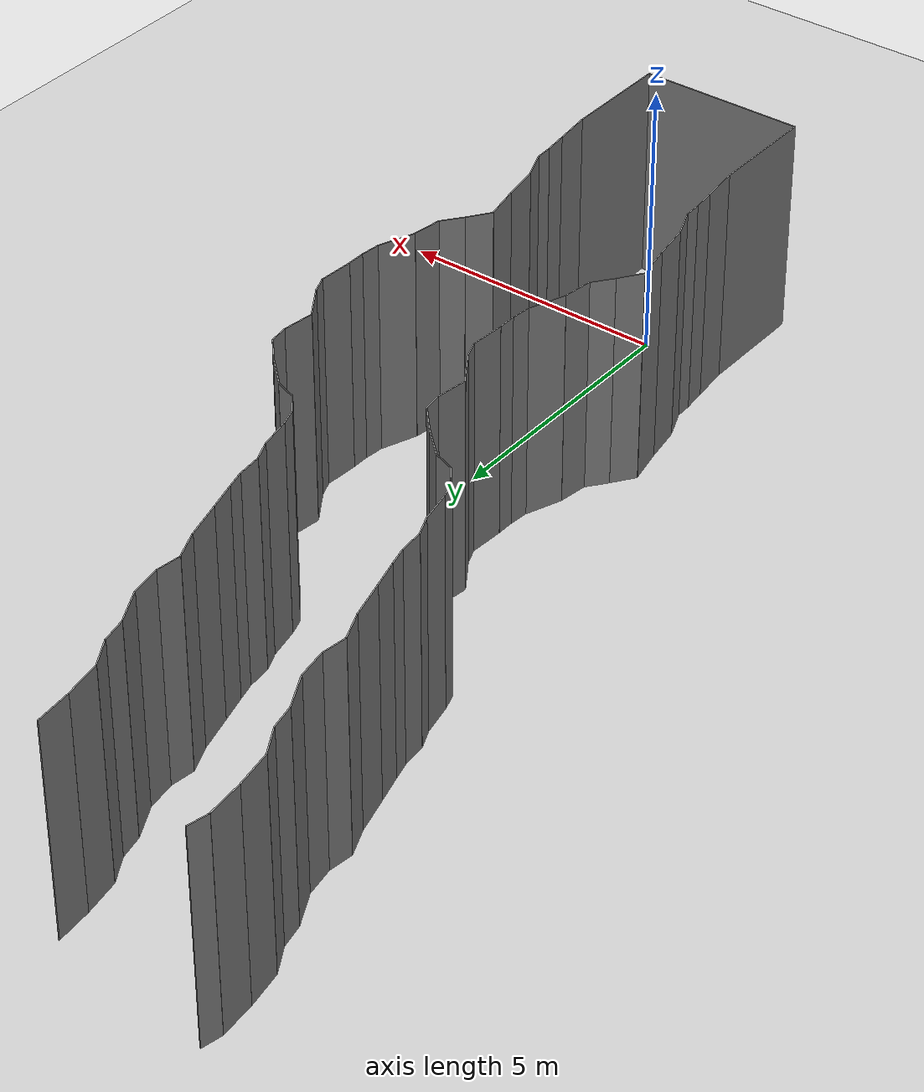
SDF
<sdf version="1.6">
 <world name="default">
  <model name="ground_plane">
   <static>1</static>
   <link name="link">
    <collision name="collision">
     <geometry><plane><normal>0 0 1</normal><size>200 200</size></plane></geometry>
     <surface><friction><ode><mu>100</mu><mu2>50</mu2></ode></friction></surface>
    </collision>
    <visual name="visual">
     <cast_shadows>0</cast_shadows>
     <geometry><plane><normal>0 0 1</normal><size>200 200</size></plane></geometry>
     <material>
      <script><uri>file://media/materials/scripts/gazebo.material</uri><name>Gazebo/Grey</name></script>
     </material>
    </visual>
   </link>
   <pose>0 100 0 0 -0 0</pose>
  </model>
  <model name="wall_back">
   <static>1</static>
   <pose>0.0 -2 2 0.0 0 0.0</pose>
   <link name="link">
    <collision name="collision"><geometry><box><size>3 0.02 4</size></box></geometry></collision>
    <visual name="visual">
     <material>
      <script><name>Gazebo/Grey</name><uri>file://media/materials/scripts/gazebo.material</uri></script>
     </material>
     <geometry><box><size>3 0.02 4</size></box></geometry>
    </visual>
   </link>
  </model>
  <model name="wall_left">
   <static>1</static>
   <pose>1.5 -1 2 0 0 0.00</pose>
   <link name="link">
    <collision name="collision"><geometry><box><size>0.02 2 4</size></box></geometry></collision>
    <visual name="visual">
     <material>
      <script><name>Gazebo/Grey</name><uri>file://media/materials/scripts/gazebo.material</uri></script>
     </material>
     <geometry><box><size>0.02 2 4</size></box></geometry>
    </visual>
   </link>
  </model>
  <model name="wall_right">
   <static>1</static>
   <pose>-1.5 -1 2 0 0 0.00</pose>
   <link name="link">
    <collision name="collision"><geometry><box><size>0.02 2 4</size></box></geometry></collision>
    <visual name="visual">
     <material>
      <script><name>Gazebo/Grey</name><uri>file://media/materials/scripts/gazebo.material</uri></script>
     </material>
     <geometry><box><size>0.02 2 4</size></box></geometry>
    </visual>
   </link>
  </model>
  <model name="wall_0">
   <static>1</static>
   <pose>-1.539381283969348 0.34608955113164763 2 0 0 0.11330195482381757</pose>
   <link name="link">
    <collision name="collision"><geometry><box><size>0.02 0.696645858179 4</size></box></geometry></collision>
    <visual name="visual">
     <material>
      <script><name>Gazebo/Grey</name><uri>file://media/materials/scripts/gazebo.material</uri></script>
     </material>
     <geometry><box><size>0.02 0.696645858179 4</size></box></geometry>
    </visual>
   </link>
  </model>
  <model name="wall_1">
   <static>1</static>
   <pose>1.460618716030652 0.34608955113164763 2 0 0 0.11330195482381757</pose>
   <link name="link">
    <collision name="collision"><geometry><box><size>0.02 0.696645858179 4</size></box></geometry></collision>
    <visual name="visual">
     <material>
      <script><name>Gazebo/Grey</name><uri>file://media/materials/scripts/gazebo.material</uri></script>
     </material>
     <geometry><box><size>0.02 0.696645858179 4</size></box></geometry>
    </visual>
   </link>
  </model>
  <model name="wall_2">
   <static>1</static>
   <pose>-1.6018663273035938 0.903861173566263 2 0 0 0.10871336168001268</pose>
   <link name="link">
    <collision name="collision"><geometry><box><size>0.02 0.425878306599 4</size></box></geometry></collision>
    <visual name="visual">
     <material>
      <script><name>Gazebo/Grey</name><uri>file://media/materials/scripts/gazebo.material</uri></script>
     </material>
     <geometry><box><size>0.02 0.425878306599 4</size></box></geometry>
    </visual>
   </link>
  </model>
  <model name="wall_3">
   <static>1</static>
   <pose>1.3981336726964062 0.903861173566263 2 0 0 0.10871336168001268</pose>
   <link name="link">
    <collision name="collision"><geometry><box><size>0.02 0.425878306599 4</size></box></geometry></collision>
    <visual name="visual">
     <material>
      <script><name>Gazebo/Grey</name><uri>file://media/materials/scripts/gazebo.material</uri></script>
     </material>
     <geometry><box><size>0.02 0.425878306599 4</size></box></geometry>
    </visual>
   </link>
  </model>
  <model name="wall_4">
   <static>1</static>
   <pose>-1.6301238122375017 1.2685925525295065 2 0 0 0.03366090975978104</pose>
   <link name="link">
    <collision name="collision"><geometry><box><size>0.02 0.306272110794 4</size></box></geometry></collision>
    <visual name="visual">
     <material>
      <script><name>Gazebo/Grey</name><uri>file://media/materials/scripts/gazebo.material</uri></script>
     </material>
     <geometry><box><size>0.02 0.306272110794 4</size></box></geometry>
    </visual>
   </link>
  </model>
  <model name="wall_5">
   <static>1</static>
   <pose>1.3698761877624983 1.2685925525295065 2 0 0 0.03366090975978104</pose>
   <link name="link">
    <collision name="collision"><geometry><box><size>0.02 0.306272110794 4</size></box></geometry></collision>
    <visual name="visual">
     <material>
      <script><name>Gazebo/Grey</name><uri>file://media/materials/scripts/gazebo.material</uri></script>
     </material>
     <geometry><box><size>0.02 0.306272110794 4</size></box></geometry>
    </visual>
   </link>
  </model>
  <model name="wall_6">
   <static>1</static>
   <pose>-1.744771728942799 1.6880777122366888 2 0 0 0.3899178811531052</pose>
   <link name="link">
    <collision name="collision"><geometry><box><size>0.02 0.576114714787 4</size></box></geometry></collision>
    <visual name="visual">
     <material>
      <script><name>Gazebo/Grey</name><uri>file://media/materials/scripts/gazebo.material</uri></script>
     </material>
     <geometry><box><size>0.02 0.576114714787 4</size></box></geometry>
    </visual>
   </link>
  </model>
  <model name="wall_7">
   <static>1</static>
   <pose>1.255228271057201 1.6880777122366888 2 0 0 0.3899178811531052</pose>
   <link name="link">
    <collision name="collision"><geometry><box><size>0.02 0.576114714787 4</size></box></geometry></collision>
    <visual name="visual">
     <material>
      <script><name>Gazebo/Grey</name><uri>file://media/materials/scripts/gazebo.material</uri></script>
     </material>
     <geometry><box><size>0.02 0.576114714787 4</size></box></geometry>
    </visual>
   </link>
  </model>
  <model name="wall_8">
   <static>1</static>
   <pose>-1.910030564757278 2.2933393088433336 2 0 0 0.16311974463424703</pose>
   <link name="link">
    <collision name="collision"><geometry><box><size>0.02 0.686768027132 4</size></box></geometry></collision>
    <visual name="visual">
     <material>
      <script><name>Gazebo/Grey</name><uri>file://media/materials/scripts/gazebo.material</uri></script>
     </material>
     <geometry><box><size>0.02 0.686768027132 4</size></box></geometry>
    </visual>
   </link>
  </model>
  <model name="wall_9">
   <static>1</static>
   <pose>1.089969435242722 2.2933393088433336 2 0 0 0.16311974463424703</pose>
   <link name="link">
    <collision name="collision"><geometry><box><size>0.02 0.686768027132 4</size></box></geometry></collision>
    <visual name="visual">
     <material>
      <script><name>Gazebo/Grey</name><uri>file://media/materials/scripts/gazebo.material</uri></script>
     </material>
     <geometry><box><size>0.02 0.686768027132 4</size></box></geometry>
    </visual>
   </link>
  </model>
  <model name="wall_10">
   <static>1</static>
   <pose>-2.033596665253377 2.9646428908293028 2 0 0 0.20116936980153466</pose>
   <link name="link">
    <collision name="collision"><geometry><box><size>0.02 0.678641436373 4</size></box></geometry></collision>
    <visual name="visual">
     <material>
      <script><name>Gazebo/Grey</name><uri>file://media/materials/scripts/gazebo.material</uri></script>
     </material>
     <geometry><box><size>0.02 0.678641436373 4</size></box></geometry>
    </visual>
   </link>
  </model>
  <model name="wall_11">
   <static>1</static>
   <pose>0.966403334746623 2.9646428908293028 2 0 0 0.20116936980153466</pose>
   <link name="link">
    <collision name="collision"><geometry><box><size>0.02 0.678641436373 4</size></box></geometry></collision>
    <visual name="visual">
     <material>
      <script><name>Gazebo/Grey</name><uri>file://media/materials/scripts/gazebo.material</uri></script>
     </material>
     <geometry><box><size>0.02 0.678641436373 4</size></box></geometry>
    </visual>
   </link>
  </model>
  <model name="wall_12">
   <static>1</static>
   <pose>-1.9622658523186232 3.495883401475986 2 0 0 -0.6107205533705103</pose>
   <link name="link">
    <collision name="collision"><geometry><box><size>0.02 0.485239687058 4</size></box></geometry></collision>
    <visual name="visual">
     <material>
      <script><name>Gazebo/Grey</name><uri>file://media/materials/scripts/gazebo.material</uri></script>
     </material>
     <geometry><box><size>0.02 0.485239687058 4</size></box></geometry>
    </visual>
   </link>
  </model>
  <model name="wall_13">
   <static>1</static>
   <pose>1.0377341476813768 3.495883401475986 2 0 0 -0.6107205533705103</pose>
   <link name="link">
    <collision name="collision"><geometry><box><size>0.02 0.485239687058 4</size></box></geometry></collision>
    <visual name="visual">
     <material>
      <script><name>Gazebo/Grey</name><uri>file://media/materials/scripts/gazebo.material</uri></script>
     </material>
     <geometry><box><size>0.02 0.485239687058 4</size></box></geometry>
    </visual>
   </link>
  </model>
  <model name="wall_14">
   <static>1</static>
   <pose>-1.690713169516392 3.8673843807185744 2 0 0 -0.65403792310857</pose>
   <link name="link">
    <collision name="collision"><geometry><box><size>0.02 0.435309951297 4</size></box></geometry></collision>
    <visual name="visual">
     <material>
      <script><name>Gazebo/Grey</name><uri>file://media/materials/scripts/gazebo.material</uri></script>
     </material>
     <geometry><box><size>0.02 0.435309951297 4</size></box></geometry>
    </visual>
   </link>
  </model>
  <model name="wall_15">
   <static>1</static>
   <pose>1.309286830483608 3.8673843807185744 2 0 0 -0.65403792310857</pose>
   <link name="link">
    <collision name="collision"><geometry><box><size>0.02 0.435309951297 4</size></box></geometry></collision>
    <visual name="visual">
     <material>
      <script><name>Gazebo/Grey</name><uri>file://media/materials/scripts/gazebo.material</uri></script>
     </material>
     <geometry><box><size>0.02 0.435309951297 4</size></box></geometry>
    </visual>
   </link>
  </model>
  <model name="wall_16">
   <static>1</static>
   <pose>-1.5214225351436297 4.30762316468083 2 0 0 -0.13696933396929434</pose>
   <link name="link">
    <collision name="collision"><geometry><box><size>0.02 0.540058955466 4</size></box></geometry></collision>
    <visual name="visual">
     <material>
      <script><name>Gazebo/Grey</name><uri>file://media/materials/scripts/gazebo.material</uri></script>
     </material>
     <geometry><box><size>0.02 0.540058955466 4</size></box></geometry>
    </visual>
   </link>
  </model>
  <model name="wall_17">
   <static>1</static>
   <pose>1.4785774648563703 4.30762316468083 2 0 0 -0.13696933396929434</pose>
   <link name="link">
    <collision name="collision"><geometry><box><size>0.02 0.540058955466 4</size></box></geometry></collision>
    <visual name="visual">
     <material>
      <script><name>Gazebo/Grey</name><uri>file://media/materials/scripts/gazebo.material</uri></script>
     </material>
     <geometry><box><size>0.02 0.540058955466 4</size></box></geometry>
    </visual>
   </link>
  </model>
  <model name="wall_18">
   <static>1</static>
   <pose>-1.361425213174102 4.899337924793357 2 0 0 -0.36294667285411597</pose>
   <link name="link">
    <collision name="collision"><geometry><box><size>0.02 0.693614255691 4</size></box></geometry></collision>
    <visual name="visual">
     <material>
      <script><name>Gazebo/Grey</name><uri>file://media/materials/scripts/gazebo.material</uri></script>
     </material>
     <geometry><box><size>0.02 0.693614255691 4</size></box></geometry>
    </visual>
   </link>
  </model>
  <model name="wall_19">
   <static>1</static>
   <pose>1.638574786825898 4.899337924793357 2 0 0 -0.36294667285411597</pose>
   <link name="link">
    <collision name="collision"><geometry><box><size>0.02 0.693614255691 4</size></box></geometry></collision>
    <visual name="visual">
     <material>
      <script><name>Gazebo/Grey</name><uri>file://media/materials/scripts/gazebo.material</uri></script>
     </material>
     <geometry><box><size>0.02 0.693614255691 4</size></box></geometry>
    </visual>
   </link>
  </model>
  <model name="wall_20">
   <static>1</static>
   <pose>-1.2203908917650397 5.400729517939221 2 0 0 -0.10072743707660174</pose>
   <link name="link">
    <collision name="collision"><geometry><box><size>0.02 0.356159896919 4</size></box></geometry></collision>
    <visual name="visual">
     <material>
      <script><name>Gazebo/Grey</name><uri>file://media/materials/scripts/gazebo.material</uri></script>
     </material>
     <geometry><box><size>0.02 0.356159896919 4</size></box></geometry>
    </visual>
   </link>
  </model>
  <model name="wall_21">
   <static>1</static>
   <pose>1.7796091082349603 5.400729517939221 2 0 0 -0.10072743707660174</pose>
   <link name="link">
    <collision name="collision"><geometry><box><size>0.02 0.356159896919 4</size></box></geometry></collision>
    <visual name="visual">
     <material>
      <script><name>Gazebo/Grey</name><uri>file://media/materials/scripts/gazebo.material</uri></script>
     </material>
     <geometry><box><size>0.02 0.356159896919 4</size></box></geometry>
    </visual>
   </link>
  </model>
  <model name="wall_22">
   <static>1</static>
   <pose>-1.2024886098356897 5.740252224396053 2 0 0 3.0415604708249145e-05</pose>
   <link name="link">
    <collision name="collision"><geometry><box><size>0.02 0.324690791117 4</size></box></geometry></collision>
    <visual name="visual">
     <material>
      <script><name>Gazebo/Grey</name><uri>file://media/materials/scripts/gazebo.material</uri></script>
     </material>
     <geometry><box><size>0.02 0.324690791117 4</size></box></geometry>
    </visual>
   </link>
  </model>
  <model name="wall_23">
   <static>1</static>
   <pose>1.7975113901643103 5.740252224396053 2 0 0 3.0415604708249145e-05</pose>
   <link name="link">
    <collision name="collision"><geometry><box><size>0.02 0.324690791117 4</size></box></geometry></collision>
    <visual name="visual">
     <material>
      <script><name>Gazebo/Grey</name><uri>file://media/materials/scripts/gazebo.material</uri></script>
     </material>
     <geometry><box><size>0.02 0.324690791117 4</size></box></geometry>
    </visual>
   </link>
  </model>
  <model name="wall_24">
   <static>1</static>
   <pose>-1.1829643800035627 6.215769120135279 2 0 0 -0.0622786948214693</pose>
   <link name="link">
    <collision name="collision"><geometry><box><size>0.02 0.627559644854 4</size></box></geometry></collision>
    <visual name="visual">
     <material>
      <script><name>Gazebo/Grey</name><uri>file://media/materials/scripts/gazebo.material</uri></script>
     </material>
     <geometry><box><size>0.02 0.627559644854 4</size></box></geometry>
    </visual>
   </link>
  </model>
  <model name="wall_25">
   <static>1</static>
   <pose>1.8170356199964373 6.215769120135279 2 0 0 -0.0622786948214693</pose>
   <link name="link">
    <collision name="collision"><geometry><box><size>0.02 0.627559644854 4</size></box></geometry></collision>
    <visual name="visual">
     <material>
      <script><name>Gazebo/Grey</name><uri>file://media/materials/scripts/gazebo.material</uri></script>
     </material>
     <geometry><box><size>0.02 0.627559644854 4</size></box></geometry>
    </visual>
   </link>
  </model>
  <model name="wall_26">
   <static>1</static>
   <pose>-1.2245567676177287 6.681485203351496 2 0 0 0.38109240008205464</pose>
   <link name="link">
    <collision name="collision"><geometry><box><size>0.02 0.328668187145 4</size></box></geometry></collision>
    <visual name="visual">
     <material>
      <script><name>Gazebo/Grey</name><uri>file://media/materials/scripts/gazebo.material</uri></script>
     </material>
     <geometry><box><size>0.02 0.328668187145 4</size></box></geometry>
    </visual>
   </link>
  </model>
  <model name="wall_27">
   <static>1</static>
   <pose>1.7754432323822713 6.681485203351496 2 0 0 0.38109240008205464</pose>
   <link name="link">
    <collision name="collision"><geometry><box><size>0.02 0.328668187145 4</size></box></geometry></collision>
    <visual name="visual">
     <material>
      <script><name>Gazebo/Grey</name><uri>file://media/materials/scripts/gazebo.material</uri></script>
     </material>
     <geometry><box><size>0.02 0.328668187145 4</size></box></geometry>
    </visual>
   </link>
  </model>
  <model name="wall_28">
   <static>1</static>
   <pose>-1.476400186071474 7.122371808876059 2 0 0 0.5843776173376058</pose>
   <link name="link">
    <collision name="collision"><geometry><box><size>0.02 0.69142158216 4</size></box></geometry></collision>
    <visual name="visual">
     <material>
      <script><name>Gazebo/Grey</name><uri>file://media/materials/scripts/gazebo.material</uri></script>
     </material>
     <geometry><box><size>0.02 0.69142158216 4</size></box></geometry>
    </visual>
   </link>
  </model>
  <model name="wall_29">
   <static>1</static>
   <pose>1.523599813928526 7.122371808876059 2 0 0 0.5843776173376058</pose>
   <link name="link">
    <collision name="collision"><geometry><box><size>0.02 0.69142158216 4</size></box></geometry></collision>
    <visual name="visual">
     <material>
      <script><name>Gazebo/Grey</name><uri>file://media/materials/scripts/gazebo.material</uri></script>
     </material>
     <geometry><box><size>0.02 0.69142158216 4</size></box></geometry>
    </visual>
   </link>
  </model>
  <model name="wall_30">
   <static>1</static>
   <pose>-1.6308915984765664 7.696252702916271 2 0 0 -0.12621004858549317</pose>
   <link name="link">
    <collision name="collision"><geometry><box><size>0.02 0.575656469387 4</size></box></geometry></collision>
    <visual name="visual">
     <material>
      <script><name>Gazebo/Grey</name><uri>file://media/materials/scripts/gazebo.material</uri></script>
     </material>
     <geometry><box><size>0.02 0.575656469387 4</size></box></geometry>
    </visual>
   </link>
  </model>
  <model name="wall_31">
   <static>1</static>
   <pose>1.3691084015234336 7.696252702916271 2 0 0 -0.12621004858549317</pose>
   <link name="link">
    <collision name="collision"><geometry><box><size>0.02 0.575656469387 4</size></box></geometry></collision>
    <visual name="visual">
     <material>
      <script><name>Gazebo/Grey</name><uri>file://media/materials/scripts/gazebo.material</uri></script>
     </material>
     <geometry><box><size>0.02 0.575656469387 4</size></box></geometry>
    </visual>
   </link>
  </model>
  <model name="wall_32">
   <static>1</static>
   <pose>-1.6194561827558813 8.150694453887189 2 0 0 0.1457594388169777</pose>
   <link name="link">
    <collision name="collision"><geometry><box><size>0.02 0.341426281734 4</size></box></geometry></collision>
    <visual name="visual">
     <material>
      <script><name>Gazebo/Grey</name><uri>file://media/materials/scripts/gazebo.material</uri></script>
     </material>
     <geometry><box><size>0.02 0.341426281734 4</size></box></geometry>
    </visual>
   </link>
  </model>
  <model name="wall_33">
   <static>1</static>
   <pose>1.3805438172441187 8.150694453887189 2 0 0 0.1457594388169777</pose>
   <link name="link">
    <collision name="collision"><geometry><box><size>0.02 0.341426281734 4</size></box></geometry></collision>
    <visual name="visual">
     <material>
      <script><name>Gazebo/Grey</name><uri>file://media/materials/scripts/gazebo.material</uri></script>
     </material>
     <geometry><box><size>0.02 0.341426281734 4</size></box></geometry>
    </visual>
   </link>
  </model>
  <model name="wall_34">
   <static>1</static>
   <pose>-1.8318253145332912 8.526874529124926 2 0 0 0.7355394694841793</pose>
   <link name="link">
    <collision name="collision"><geometry><box><size>0.02 0.559098837912 4</size></box></geometry></collision>
    <visual name="visual">
     <material>
      <script><name>Gazebo/Grey</name><uri>file://media/materials/scripts/gazebo.material</uri></script>
     </material>
     <geometry><box><size>0.02 0.559098837912 4</size></box></geometry>
    </visual>
   </link>
  </model>
  <model name="wall_35">
   <static>1</static>
   <pose>1.1681746854667088 8.526874529124926 2 0 0 0.7355394694841793</pose>
   <link name="link">
    <collision name="collision"><geometry><box><size>0.02 0.559098837912 4</size></box></geometry></collision>
    <visual name="visual">
     <material>
      <script><name>Gazebo/Grey</name><uri>file://media/materials/scripts/gazebo.material</uri></script>
     </material>
     <geometry><box><size>0.02 0.559098837912 4</size></box></geometry>
    </visual>
   </link>
  </model>
  <model name="wall_36">
   <static>1</static>
   <pose>-2.250692934909788 8.949747068734915 2 0 0 0.8205114292339593</pose>
   <link name="link">
    <collision name="collision"><geometry><box><size>0.02 0.632386104776 4</size></box></geometry></collision>
    <visual name="visual">
     <material>
      <script><name>Gazebo/Grey</name><uri>file://media/materials/scripts/gazebo.material</uri></script>
     </material>
     <geometry><box><size>0.02 0.632386104776 4</size></box></geometry>
    </visual>
   </link>
  </model>
  <model name="wall_37">
   <static>1</static>
   <pose>0.7493070650902118 8.949747068734915 2 0 0 0.8205114292339593</pose>
   <link name="link">
    <collision name="collision"><geometry><box><size>0.02 0.632386104776 4</size></box></geometry></collision>
    <visual name="visual">
     <material>
      <script><name>Gazebo/Grey</name><uri>file://media/materials/scripts/gazebo.material</uri></script>
     </material>
     <geometry><box><size>0.02 0.632386104776 4</size></box></geometry>
    </visual>
   </link>
  </model>
  <model name="wall_38">
   <static>1</static>
   <pose>-2.6641135031653933 9.230572026008586 2 0 0 1.226875505391086</pose>
   <link name="link">
    <collision name="collision"><geometry><box><size>0.02 0.386911684201 4</size></box></geometry></collision>
    <visual name="visual">
     <material>
      <script><name>Gazebo/Grey</name><uri>file://media/materials/scripts/gazebo.material</uri></script>
     </material>
     <geometry><box><size>0.02 0.386911684201 4</size></box></geometry>
    </visual>
   </link>
  </model>
  <model name="wall_39">
   <static>1</static>
   <pose>0.3358864968346067 9.230572026008586 2 0 0 1.226875505391086</pose>
   <link name="link">
    <collision name="collision"><geometry><box><size>0.02 0.386911684201 4</size></box></geometry></collision>
    <visual name="visual">
     <material>
      <script><name>Gazebo/Grey</name><uri>file://media/materials/scripts/gazebo.material</uri></script>
     </material>
     <geometry><box><size>0.02 0.386911684201 4</size></box></geometry>
    </visual>
   </link>
  </model>
  <model name="wall_40">
   <static>1</static>
   <pose>-2.9756150246463164 9.454474165030165 2 0 0 0.684034021752631</pose>
   <link name="link">
    <collision name="collision"><geometry><box><size>0.02 0.409461723003 4</size></box></geometry></collision>
    <visual name="visual">
     <material>
      <script><name>Gazebo/Grey</name><uri>file://media/materials/scripts/gazebo.material</uri></script>
     </material>
     <geometry><box><size>0.02 0.409461723003 4</size></box></geometry>
    </visual>
   </link>
  </model>
  <model name="wall_41">
   <static>1</static>
   <pose>0.024384975353683558 9.454474165030165 2 0 0 0.684034021752631</pose>
   <link name="link">
    <collision name="collision"><geometry><box><size>0.02 0.409461723003 4</size></box></geometry></collision>
    <visual name="visual">
     <material>
      <script><name>Gazebo/Grey</name><uri>file://media/materials/scripts/gazebo.material</uri></script>
     </material>
     <geometry><box><size>0.02 0.409461723003 4</size></box></geometry>
    </visual>
   </link>
  </model>
  <model name="wall_42">
   <static>1</static>
   <pose>-3.1544555731821977 9.763482437870543 2 0 0 0.31787917403633137</pose>
   <link name="link">
    <collision name="collision"><geometry><box><size>0.02 0.31652948766 4</size></box></geometry></collision>
    <visual name="visual">
     <material>
      <script><name>Gazebo/Grey</name><uri>file://media/materials/scripts/gazebo.material</uri></script>
     </material>
     <geometry><box><size>0.02 0.31652948766 4</size></box></geometry>
    </visual>
   </link>
  </model>
  <model name="wall_43">
   <static>1</static>
   <pose>-0.15445557318219771 9.763482437870543 2 0 0 0.31787917403633137</pose>
   <link name="link">
    <collision name="collision"><geometry><box><size>0.02 0.31652948766 4</size></box></geometry></collision>
    <visual name="visual">
     <material>
      <script><name>Gazebo/Grey</name><uri>file://media/materials/scripts/gazebo.material</uri></script>
     </material>
     <geometry><box><size>0.02 0.31652948766 4</size></box></geometry>
    </visual>
   </link>
  </model>
  <model name="wall_44">
   <static>1</static>
   <pose>-3.2632362361509677 10.199207949157067 2 0 0 0.20491978559406746</pose>
   <link name="link">
    <collision name="collision"><geometry><box><size>0.02 0.582976974409 4</size></box></geometry></collision>
    <visual name="visual">
     <material>
      <script><name>Gazebo/Grey</name><uri>file://media/materials/scripts/gazebo.material</uri></script>
     </material>
     <geometry><box><size>0.02 0.582976974409 4</size></box></geometry>
    </visual>
   </link>
  </model>
  <model name="wall_45">
   <static>1</static>
   <pose>-0.2632362361509677 10.199207949157067 2 0 0 0.20491978559406746</pose>
   <link name="link">
    <collision name="collision"><geometry><box><size>0.02 0.582976974409 4</size></box></geometry></collision>
    <visual name="visual">
     <material>
      <script><name>Gazebo/Grey</name><uri>file://media/materials/scripts/gazebo.material</uri></script>
     </material>
     <geometry><box><size>0.02 0.582976974409 4</size></box></geometry>
    </visual>
   </link>
  </model>
  <model name="wall_46">
   <static>1</static>
   <pose>-3.3968194300057477 10.65912502667023 2 0 0 0.4023291541690551</pose>
   <link name="link">
    <collision name="collision"><geometry><box><size>0.02 0.379344742762 4</size></box></geometry></collision>
    <visual name="visual">
     <material>
      <script><name>Gazebo/Grey</name><uri>file://media/materials/scripts/gazebo.material</uri></script>
     </material>
     <geometry><box><size>0.02 0.379344742762 4</size></box></geometry>
    </visual>
   </link>
  </model>
  <model name="wall_47">
   <static>1</static>
   <pose>-0.3968194300057477 10.65912502667023 2 0 0 0.4023291541690551</pose>
   <link name="link">
    <collision name="collision"><geometry><box><size>0.02 0.379344742762 4</size></box></geometry></collision>
    <visual name="visual">
     <material>
      <script><name>Gazebo/Grey</name><uri>file://media/materials/scripts/gazebo.material</uri></script>
     </material>
     <geometry><box><size>0.02 0.379344742762 4</size></box></geometry>
    </visual>
   </link>
  </model>
  <model name="wall_48">
   <static>1</static>
   <pose>-3.49074988619568 11.055350759250157 2 0 0 0.08845595671554057</pose>
   <link name="link">
    <collision name="collision"><geometry><box><size>0.02 0.445137181248 4</size></box></geometry></collision>
    <visual name="visual">
     <material>
      <script><name>Gazebo/Grey</name><uri>file://media/materials/scripts/gazebo.material</uri></script>
     </material>
     <geometry><box><size>0.02 0.445137181248 4</size></box></geometry>
    </visual>
   </link>
  </model>
  <model name="wall_49">
   <static>1</static>
   <pose>-0.49074988619568005 11.055350759250157 2 0 0 0.08845595671554057</pose>
   <link name="link">
    <collision name="collision"><geometry><box><size>0.02 0.445137181248 4</size></box></geometry></collision>
    <visual name="visual">
     <material>
      <script><name>Gazebo/Grey</name><uri>file://media/materials/scripts/gazebo.material</uri></script>
     </material>
     <geometry><box><size>0.02 0.445137181248 4</size></box></geometry>
    </visual>
   </link>
  </model>
  <model name="wall_50">
   <static>1</static>
   <pose>-3.553028492758474 11.442021798303815 2 0 0 0.2527996213761783</pose>
   <link name="link">
    <collision name="collision"><geometry><box><size>0.02 0.340776483665 4</size></box></geometry></collision>
    <visual name="visual">
     <material>
      <script><name>Gazebo/Grey</name><uri>file://media/materials/scripts/gazebo.material</uri></script>
     </material>
     <geometry><box><size>0.02 0.340776483665 4</size></box></geometry>
    </visual>
   </link>
  </model>
  <model name="wall_51">
   <static>1</static>
   <pose>-0.5530284927584739 11.442021798303815 2 0 0 0.2527996213761783</pose>
   <link name="link">
    <collision name="collision"><geometry><box><size>0.02 0.340776483665 4</size></box></geometry></collision>
    <visual name="visual">
     <material>
      <script><name>Gazebo/Grey</name><uri>file://media/materials/scripts/gazebo.material</uri></script>
     </material>
     <geometry><box><size>0.02 0.340776483665 4</size></box></geometry>
    </visual>
   </link>
  </model>
  <model name="wall_52">
   <static>1</static>
   <pose>-3.665826721437401 11.862270101137563 2 0 0 0.26829578569841434</pose>
   <link name="link">
    <collision name="collision"><geometry><box><size>0.02 0.529494528106 4</size></box></geometry></collision>
    <visual name="visual">
     <material>
      <script><name>Gazebo/Grey</name><uri>file://media/materials/scripts/gazebo.material</uri></script>
     </material>
     <geometry><box><size>0.02 0.529494528106 4</size></box></geometry>
    </visual>
   </link>
  </model>
  <model name="wall_53">
   <static>1</static>
   <pose>-0.665826721437401 11.862270101137563 2 0 0 0.26829578569841434</pose>
   <link name="link">
    <collision name="collision"><geometry><box><size>0.02 0.529494528106 4</size></box></geometry></collision>
    <visual name="visual">
     <material>
      <script><name>Gazebo/Grey</name><uri>file://media/materials/scripts/gazebo.material</uri></script>
     </material>
     <geometry><box><size>0.02 0.529494528106 4</size></box></geometry>
    </visual>
   </link>
  </model>
  <model name="wall_54">
   <static>1</static>
   <pose>-3.8258063287665083 12.454246231493508 2 0 0 0.26063385075908957</pose>
   <link name="link">
    <collision name="collision"><geometry><box><size>0.02 0.696938722544 4</size></box></geometry></collision>
    <visual name="visual">
     <material>
      <script><name>Gazebo/Grey</name><uri>file://media/materials/scripts/gazebo.material</uri></script>
     </material>
     <geometry><box><size>0.02 0.696938722544 4</size></box></geometry>
    </visual>
   </link>
  </model>
  <model name="wall_55">
   <static>1</static>
   <pose>-0.8258063287665083 12.454246231493508 2 0 0 0.26063385075908957</pose>
   <link name="link">
    <collision name="collision"><geometry><box><size>0.02 0.696938722544 4</size></box></geometry></collision>
    <visual name="visual">
     <material>
      <script><name>Gazebo/Grey</name><uri>file://media/materials/scripts/gazebo.material</uri></script>
     </material>
     <geometry><box><size>0.02 0.696938722544 4</size></box></geometry>
    </visual>
   </link>
  </model>
  <model name="wall_56">
   <static>1</static>
   <pose>-4.019517550081671 13.040960848418301 2 0 0 0.39390645956759857</pose>
   <link name="link">
    <collision name="collision"><geometry><box><size>0.02 0.541497978423 4</size></box></geometry></collision>
    <visual name="visual">
     <material>
      <script><name>Gazebo/Grey</name><uri>file://media/materials/scripts/gazebo.material</uri></script>
     </material>
     <geometry><box><size>0.02 0.541497978423 4</size></box></geometry>
    </visual>
   </link>
  </model>
  <model name="wall_57">
   <static>1</static>
   <pose>-1.0195175500816713 13.040960848418301 2 0 0 0.39390645956759857</pose>
   <link name="link">
    <collision name="collision"><geometry><box><size>0.02 0.541497978423 4</size></box></geometry></collision>
    <visual name="visual">
     <material>
      <script><name>Gazebo/Grey</name><uri>file://media/materials/scripts/gazebo.material</uri></script>
     </material>
     <geometry><box><size>0.02 0.541497978423 4</size></box></geometry>
    </visual>
   </link>
  </model>
  <model name="wall_58">
   <static>1</static>
   <pose>-4.094032278653399 13.514378021306259 2 0 0 -0.13084160440009943</pose>
   <link name="link">
    <collision name="collision"><geometry><box><size>0.02 0.450658032537 4</size></box></geometry></collision>
    <visual name="visual">
     <material>
      <script><name>Gazebo/Grey</name><uri>file://media/materials/scripts/gazebo.material</uri></script>
     </material>
     <geometry><box><size>0.02 0.450658032537 4</size></box></geometry>
    </visual>
   </link>
  </model>
  <model name="wall_59">
   <static>1</static>
   <pose>-1.0940322786533994 13.514378021306259 2 0 0 -0.13084160440009943</pose>
   <link name="link">
    <collision name="collision"><geometry><box><size>0.02 0.450658032537 4</size></box></geometry></collision>
    <visual name="visual">
     <material>
      <script><name>Gazebo/Grey</name><uri>file://media/materials/scripts/gazebo.material</uri></script>
     </material>
     <geometry><box><size>0.02 0.450658032537 4</size></box></geometry>
    </visual>
   </link>
  </model>
  <model name="wall_60">
   <static>1</static>
   <pose>-4.107554099085519 14.007343003974347 2 0 0 0.1578965325324809</pose>
   <link name="link">
    <collision name="collision"><geometry><box><size>0.02 0.545915021408 4</size></box></geometry></collision>
    <visual name="visual">
     <material>
      <script><name>Gazebo/Grey</name><uri>file://media/materials/scripts/gazebo.material</uri></script>
     </material>
     <geometry><box><size>0.02 0.545915021408 4</size></box></geometry>
    </visual>
   </link>
  </model>
  <model name="wall_61">
   <static>1</static>
   <pose>-1.1075540990855188 14.007343003974347 2 0 0 0.1578965325324809</pose>
   <link name="link">
    <collision name="collision"><geometry><box><size>0.02 0.545915021408 4</size></box></geometry></collision>
    <visual name="visual">
     <material>
      <script><name>Gazebo/Grey</name><uri>file://media/materials/scripts/gazebo.material</uri></script>
     </material>
     <geometry><box><size>0.02 0.545915021408 4</size></box></geometry>
    </visual>
   </link>
  </model>
  <model name="wall_62">
   <static>1</static>
   <pose>-4.302991172112162 14.577854216884841 2 0 0 0.4690617475597031</pose>
   <link name="link">
    <collision name="collision"><geometry><box><size>0.02 0.674779500003 4</size></box></geometry></collision>
    <visual name="visual">
     <material>
      <script><name>Gazebo/Grey</name><uri>file://media/materials/scripts/gazebo.material</uri></script>
     </material>
     <geometry><box><size>0.02 0.674779500003 4</size></box></geometry>
    </visual>
   </link>
  </model>
  <model name="wall_63">
   <static>1</static>
   <pose>-1.3029911721121623 14.577854216884841 2 0 0 0.4690617475597031</pose>
   <link name="link">
    <collision name="collision"><geometry><box><size>0.02 0.674779500003 4</size></box></geometry></collision>
    <visual name="visual">
     <material>
      <script><name>Gazebo/Grey</name><uri>file://media/materials/scripts/gazebo.material</uri></script>
     </material>
     <geometry><box><size>0.02 0.674779500003 4</size></box></geometry>
    </visual>
   </link>
  </model>
  <model name="wall_64">
   <static>1</static>
   <pose>-4.499990120058984 15.097223299326723 2 0 0 0.20090645469880206</pose>
   <link name="link">
    <collision name="collision"><geometry><box><size>0.02 0.445806611424 4</size></box></geometry></collision>
    <visual name="visual">
     <material>
      <script><name>Gazebo/Grey</name><uri>file://media/materials/scripts/gazebo.material</uri></script>
     </material>
     <geometry><box><size>0.02 0.445806611424 4</size></box></geometry>
    </visual>
   </link>
  </model>
  <model name="wall_65">
   <static>1</static>
   <pose>-1.4999901200589836 15.097223299326723 2 0 0 0.20090645469880206</pose>
   <link name="link">
    <collision name="collision"><geometry><box><size>0.02 0.445806611424 4</size></box></geometry></collision>
    <visual name="visual">
     <material>
      <script><name>Gazebo/Grey</name><uri>file://media/materials/scripts/gazebo.material</uri></script>
     </material>
     <geometry><box><size>0.02 0.445806611424 4</size></box></geometry>
    </visual>
   </link>
  </model>
  <model name="wall_66">
   <static>1</static>
   <pose>-4.679886187158877 15.55493133657857 2 0 0 0.5149711075867297</pose>
   <link name="link">
    <collision name="collision"><geometry><box><size>0.02 0.549893776646 4</size></box></geometry></collision>
    <visual name="visual">
     <material>
      <script><name>Gazebo/Grey</name><uri>file://media/materials/scripts/gazebo.material</uri></script>
     </material>
     <geometry><box><size>0.02 0.549893776646 4</size></box></geometry>
    </visual>
   </link>
  </model>
  <model name="wall_67">
   <static>1</static>
   <pose>-1.6798861871588766 15.55493133657857 2 0 0 0.5149711075867297</pose>
   <link name="link">
    <collision name="collision"><geometry><box><size>0.02 0.549893776646 4</size></box></geometry></collision>
    <visual name="visual">
     <material>
      <script><name>Gazebo/Grey</name><uri>file://media/materials/scripts/gazebo.material</uri></script>
     </material>
     <geometry><box><size>0.02 0.549893776646 4</size></box></geometry>
    </visual>
   </link>
  </model>
  <model name="wall_68">
   <static>1</static>
   <pose>-4.870622647442466 16.128074211602293 2 0 0 0.1642159429641677</pose>
   <link name="link">
    <collision name="collision"><geometry><box><size>0.02 0.676814672358 4</size></box></geometry></collision>
    <visual name="visual">
     <material>
      <script><name>Gazebo/Grey</name><uri>file://media/materials/scripts/gazebo.material</uri></script>
     </material>
     <geometry><box><size>0.02 0.676814672358 4</size></box></geometry>
    </visual>
   </link>
  </model>
  <model name="wall_69">
   <static>1</static>
   <pose>-1.8706226474424659 16.128074211602293 2 0 0 0.1642159429641677</pose>
   <link name="link">
    <collision name="collision"><geometry><box><size>0.02 0.676814672358 4</size></box></geometry></collision>
    <visual name="visual">
     <material>
      <script><name>Gazebo/Grey</name><uri>file://media/materials/scripts/gazebo.material</uri></script>
     </material>
     <geometry><box><size>0.02 0.676814672358 4</size></box></geometry>
    </visual>
   </link>
  </model>
  <model name="wall_70">
   <static>1</static>
   <pose>-4.953774103943977 16.789921392292083 2 0 0 0.08464374832966867</pose>
   <link name="link">
    <collision name="collision"><geometry><box><size>0.02 0.65834194709 4</size></box></geometry></collision>
    <visual name="visual">
     <material>
      <script><name>Gazebo/Grey</name><uri>file://media/materials/scripts/gazebo.material</uri></script>
     </material>
     <geometry><box><size>0.02 0.65834194709 4</size></box></geometry>
    </visual>
   </link>
  </model>
  <model name="wall_71">
   <static>1</static>
   <pose>-1.953774103943977 16.789921392292083 2 0 0 0.08464374832966867</pose>
   <link name="link">
    <collision name="collision"><geometry><box><size>0.02 0.65834194709 4</size></box></geometry></collision>
    <visual name="visual">
     <material>
      <script><name>Gazebo/Grey</name><uri>file://media/materials/scripts/gazebo.material</uri></script>
     </material>
     <geometry><box><size>0.02 0.65834194709 4</size></box></geometry>
    </visual>
   </link>
  </model>
  <model name="wall_72">
   <static>1</static>
   <pose>-4.940597926242914 17.303504752749035 2 0 0 -0.21745052618434096</pose>
   <link name="link">
    <collision name="collision"><geometry><box><size>0.02 0.380133633448 4</size></box></geometry></collision>
    <visual name="visual">
     <material>
      <script><name>Gazebo/Grey</name><uri>file://media/materials/scripts/gazebo.material</uri></script>
     </material>
     <geometry><box><size>0.02 0.380133633448 4</size></box></geometry>
    </visual>
   </link>
  </model>
 </world>
</sdf>
